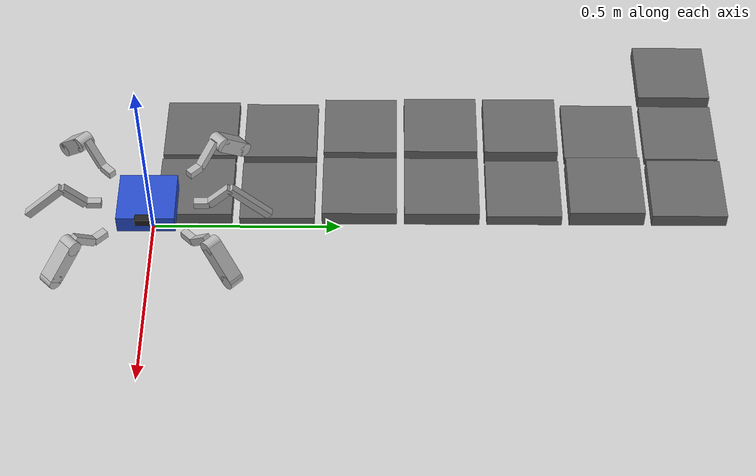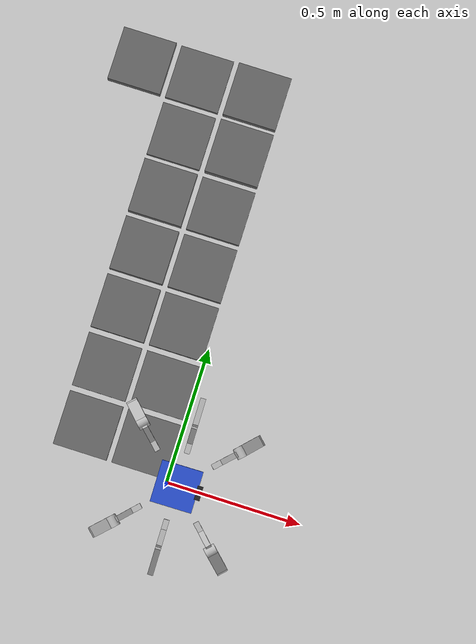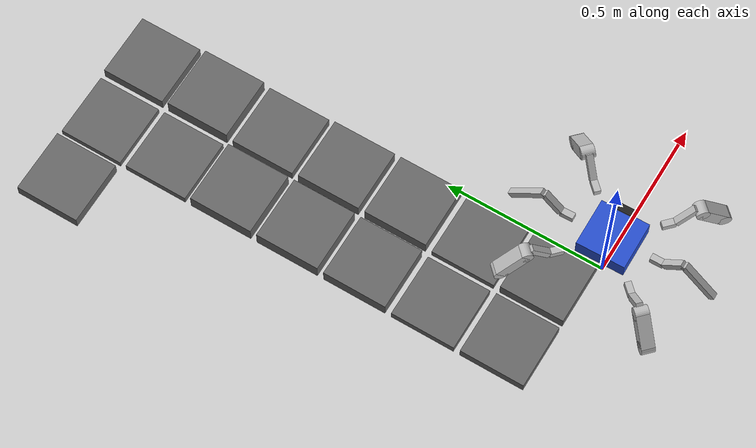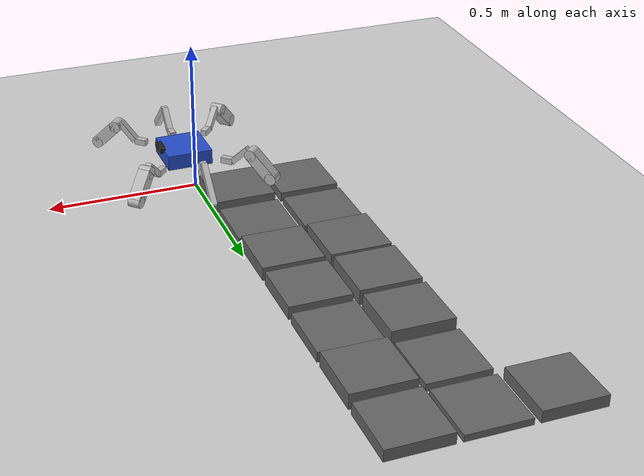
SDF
<sdf version="1.7">
 <world name="default">
  <model name="ground_plane">
   <static>1</static>
   <link name="link">
    <collision name="collision">
     <geometry><plane><normal>0 0 1</normal><size>100 100</size></plane></geometry>
     <surface>
      <contact><collide_bitmask>65535</collide_bitmask></contact>
      <friction><ode><mu>100</mu><mu2>50</mu2></ode></friction>
     </surface>
    </collision>
    <visual name="visual">
     <cast_shadows>0</cast_shadows>
     <geometry><plane><normal>0 0 1</normal><size>100 100</size></plane></geometry>
     <material>
      <script><uri>file://media/materials/scripts/gazebo.material</uri><name>Gazebo/Grey</name></script>
     </material>
    </visual>
   </link>
  </model>
  <model name="spider_bot">
   <link name="base_link">
    <inertial>
     <mass>1</mass>
     <inertia><ixx>0.02</ixx><ixy>0</ixy><ixz>0</ixz><iyy>0.02</iyy><iyz>0</iyz><izz>0.04</izz></inertia>
    </inertial>
    <collision name="base_link_collision">
     <geometry><box><size>0.15 0.15 0.05</size></box></geometry>
     <surface><friction><ode><mu>0.2</mu><mu2>0.2</mu2></ode></friction></surface>
    </collision>
    <visual name="base_link_visual">
     <geometry><box><size>0.15 0.15 0.05</size></box></geometry>
     <material>
      <script><name>Gazebo/Blue</name><uri>file://media/materials/scripts/gazebo.material</uri></script>
     </material>
    </visual>
    <visual name="base_link_fixed_joint_lump__camera_link_visual_1">
     <pose>0.08 0 0.025 0 -0 0</pose>
     <geometry><box><size>0.02 0.05 0.02</size></box></geometry>
     <material>
      <script><name>Gazebo/Black</name><uri>file://media/materials/scripts/gazebo.material</uri></script>
     </material>
    </visual>
    <sensor name="depth_camera" type="depth">
     <update_rate>30</update_rate>
     <camera name="head">
      <horizontal_fov>1.39626</horizontal_fov>
      <image><width>640</width><height>480</height><format>R8G8B8</format></image>
      <clip><near>0.05</near><far>3</far></clip>
     </camera>
     <plugin name="camera_controller" filename="libgazebo_ros_camera.so">
      <ros>
       <namespace>/</namespace>
       <remapping>custom_camera/image_raw:=camera/image_raw</remapping>
       <remapping>custom_camera/depth/image_raw:=camera/depth/image_raw</remapping>
      </ros>
      <camera_name>camera</camera_name>
      <frame_name>camera_link</frame_name>
     </plugin>
     <pose>0.08 0 0.025 0 -0 0</pose>
    </sensor>
   </link>
   <joint name="joint1" type="revolute">
    <pose relative_to="base_link">0.1 0.1 0 0 -0 0.785</pose>
    <parent>base_link</parent>
    <child>l1_c</child>
    <axis>
     <xyz>0 0 1</xyz>
     <limit><lower>-1.57</lower><upper>1.57</upper><effort>50</effort><velocity>1</velocity></limit>
     <dynamics>
      <damping>1</damping>
      <friction>0.1</friction>
      <spring_reference>0</spring_reference>
      <spring_stiffness>0</spring_stiffness>
     </dynamics>
    </axis>
   </joint>
   <link name="l1_c">
    <pose relative_to="joint1">0 0 0 0 -0 0</pose>
    <inertial>
     <mass>0.1</mass>
     <inertia><ixx>0.01</ixx><ixy>0</ixy><ixz>0</ixz><iyy>0.01</iyy><iyz>0</iyz><izz>0.01</izz></inertia>
    </inertial>
    <collision name="l1_c_collision">
     <pose>0.02 0 0 0 -0 0</pose>
     <geometry><box><size>0.04 0.02 0.02</size></box></geometry>
    </collision>
    <visual name="l1_c_visual">
     <pose>0.02 0 0 0 -0 0</pose>
     <geometry><box><size>0.04 0.02 0.02</size></box></geometry>
    </visual>
   </link>
   <joint name="joint2" type="revolute">
    <pose relative_to="l1_c">0.04 0 0 0 -0.785 0</pose>
    <parent>l1_c</parent>
    <child>l1_f</child>
    <axis>
     <xyz>0 -1 0</xyz>
     <limit><lower>-3.14</lower><upper>3.14</upper><effort>50</effort><velocity>1</velocity></limit>
     <dynamics>
      <damping>1</damping>
      <friction>0.1</friction>
      <spring_reference>0</spring_reference>
      <spring_stiffness>0</spring_stiffness>
     </dynamics>
    </axis>
   </joint>
   <link name="l1_f">
    <pose relative_to="joint2">0 0 0 0 -0 0</pose>
    <inertial>
     <mass>0.1</mass>
     <inertia><ixx>0.01</ixx><ixy>0</ixy><ixz>0</ixz><iyy>0.01</iyy><iyz>0</iyz><izz>0.01</izz></inertia>
    </inertial>
    <collision name="l1_f_collision">
     <pose>0.04 0 0 0 -0 0</pose>
     <geometry><box><size>0.08 0.02 0.02</size></box></geometry>
    </collision>
    <visual name="l1_f_visual">
     <pose>0.04 0 0 0 -0 0</pose>
     <geometry><box><size>0.08 0.02 0.02</size></box></geometry>
    </visual>
   </link>
   <joint name="joint3" type="revolute">
    <pose relative_to="l1_f">0.08 0 0 0 1.57 0</pose>
    <parent>l1_f</parent>
    <child>l1_t</child>
    <axis>
     <xyz>0 -1 0</xyz>
     <limit><lower>-3.14</lower><upper>3.14</upper><effort>50</effort><velocity>1</velocity></limit>
     <dynamics>
      <damping>1</damping>
      <friction>0.1</friction>
      <spring_reference>0</spring_reference>
      <spring_stiffness>0</spring_stiffness>
     </dynamics>
    </axis>
   </joint>
   <link name="l1_t">
    <pose relative_to="joint3">0 0 0 0 -0 0</pose>
    <inertial>
     <mass>0.1</mass>
     <inertia><ixx>0.001</ixx><ixy>0</ixy><ixz>0</ixz><iyy>0.001</iyy><iyz>0</iyz><izz>0.001</izz></inertia>
    </inertial>
    <collision name="l1_t_collision">
     <pose>0.07 0 0 0 -0 0</pose>
     <geometry><box><size>0.14 0.04 0.04</size></box></geometry>
     <surface>
      <contact><ode><kp>10000</kp><kd>100</kd></ode></contact>
      <friction><ode><mu>8</mu><mu2>8</mu2></ode></friction>
     </surface>
    </collision>
    <visual name="l1_t_visual">
     <pose>0.07 0 0 0 -0 0</pose>
     <geometry><box><size>0.1 0.04 0.04</size></box></geometry>
    </visual>
    <visual name="l1_t_visual_1">
     <pose>0.02 0 0 1.5708 -0 0</pose>
     <geometry><cylinder><length>0.04</length><radius>0.02</radius></cylinder></geometry>
    </visual>
    <visual name="l1_t_visual_2">
     <pose>0.12 0 0 1.5708 -0 0</pose>
     <geometry><cylinder><length>0.04</length><radius>0.02</radius></cylinder></geometry>
    </visual>
    <self_collide>1</self_collide>
   </link>
   <joint name="joint10" type="revolute">
    <pose relative_to="base_link">-0.1 -0.1 0 0 0 -2.355</pose>
    <parent>base_link</parent>
    <child>l4_c</child>
    <axis>
     <xyz>0 0 1</xyz>
     <limit><lower>-1.57</lower><upper>1.57</upper><effort>50</effort><velocity>1</velocity></limit>
     <dynamics>
      <damping>1</damping>
      <friction>0.1</friction>
      <spring_reference>0</spring_reference>
      <spring_stiffness>0</spring_stiffness>
     </dynamics>
    </axis>
   </joint>
   <link name="l4_c">
    <pose relative_to="joint10">0 0 0 0 -0 0</pose>
    <inertial>
     <mass>0.1</mass>
     <inertia><ixx>0.01</ixx><ixy>0</ixy><ixz>0</ixz><iyy>0.01</iyy><iyz>0</iyz><izz>0.01</izz></inertia>
    </inertial>
    <collision name="l4_c_collision">
     <pose>0.02 0 0 0 -0 0</pose>
     <geometry><box><size>0.04 0.02 0.02</size></box></geometry>
    </collision>
    <visual name="l4_c_visual">
     <pose>0.02 0 0 0 -0 0</pose>
     <geometry><box><size>0.04 0.02 0.02</size></box></geometry>
    </visual>
   </link>
   <joint name="joint11" type="revolute">
    <pose relative_to="l4_c">0.04 0 0 0 -0.785 0</pose>
    <parent>l4_c</parent>
    <child>l4_f</child>
    <axis>
     <xyz>0 -1 0</xyz>
     <limit><lower>-3.14</lower><upper>3.14</upper><effort>50</effort><velocity>1</velocity></limit>
     <dynamics>
      <damping>1</damping>
      <friction>0.1</friction>
      <spring_reference>0</spring_reference>
      <spring_stiffness>0</spring_stiffness>
     </dynamics>
    </axis>
   </joint>
   <link name="l4_f">
    <pose relative_to="joint11">0 0 0 0 -0 0</pose>
    <inertial>
     <mass>0.1</mass>
     <inertia><ixx>0.01</ixx><ixy>0</ixy><ixz>0</ixz><iyy>0.01</iyy><iyz>0</iyz><izz>0.01</izz></inertia>
    </inertial>
    <collision name="l4_f_collision">
     <pose>0.04 0 0 0 -0 0</pose>
     <geometry><box><size>0.08 0.02 0.02</size></box></geometry>
    </collision>
    <visual name="l4_f_visual">
     <pose>0.04 0 0 0 -0 0</pose>
     <geometry><box><size>0.08 0.02 0.02</size></box></geometry>
    </visual>
   </link>
   <joint name="joint12" type="revolute">
    <pose relative_to="l4_f">0.08 0 0 0 1.57 0</pose>
    <parent>l4_f</parent>
    <child>l4_t</child>
    <axis>
     <xyz>0 -1 0</xyz>
     <limit><lower>-3.14</lower><upper>3.14</upper><effort>50</effort><velocity>1</velocity></limit>
     <dynamics>
      <damping>1</damping>
      <friction>0.1</friction>
      <spring_reference>0</spring_reference>
      <spring_stiffness>0</spring_stiffness>
     </dynamics>
    </axis>
   </joint>
   <link name="l4_t">
    <pose relative_to="joint12">0 0 0 0 -0 0</pose>
    <inertial>
     <mass>0.1</mass>
     <inertia><ixx>0.001</ixx><ixy>0</ixy><ixz>0</ixz><iyy>0.001</iyy><iyz>0</iyz><izz>0.001</izz></inertia>
    </inertial>
    <collision name="l4_t_collision">
     <pose>0.07 0 0 0 -0 0</pose>
     <geometry><box><size>0.14 0.04 0.04</size></box></geometry>
     <surface>
      <contact><ode><kp>10000</kp><kd>100</kd></ode></contact>
      <friction><ode><mu>8</mu><mu2>8</mu2></ode></friction>
     </surface>
    </collision>
    <visual name="l4_t_visual">
     <pose>0.07 0 0 0 -0 0</pose>
     <geometry><box><size>0.1 0.04 0.04</size></box></geometry>
    </visual>
    <visual name="l4_t_visual_1">
     <pose>0.02 0 0 1.5708 -0 0</pose>
     <geometry><cylinder><length>0.04</length><radius>0.02</radius></cylinder></geometry>
    </visual>
    <visual name="l4_t_visual_2">
     <pose>0.12 0 0 1.5708 -0 0</pose>
     <geometry><cylinder><length>0.04</length><radius>0.02</radius></cylinder></geometry>
    </visual>
    <self_collide>1</self_collide>
   </link>
   <joint name="joint13" type="revolute">
    <pose relative_to="base_link">0 -0.12 0 0 0 -1.57</pose>
    <parent>base_link</parent>
    <child>l5_c</child>
    <axis>
     <xyz>0 0 1</xyz>
     <limit><lower>-1.57</lower><upper>1.57</upper><effort>50</effort><velocity>1</velocity></limit>
     <dynamics>
      <damping>1</damping>
      <friction>0.1</friction>
      <spring_reference>0</spring_reference>
      <spring_stiffness>0</spring_stiffness>
     </dynamics>
    </axis>
   </joint>
   <link name="l5_c">
    <pose relative_to="joint13">0 0 0 0 -0 0</pose>
    <inertial>
     <mass>0.1</mass>
     <inertia><ixx>0.01</ixx><ixy>0</ixy><ixz>0</ixz><iyy>0.01</iyy><iyz>0</iyz><izz>0.01</izz></inertia>
    </inertial>
    <collision name="l5_c_collision">
     <pose>0.02 0 0 0 -0 0</pose>
     <geometry><box><size>0.04 0.02 0.02</size></box></geometry>
    </collision>
    <visual name="l5_c_visual">
     <pose>0.02 0 0 0 -0 0</pose>
     <geometry><box><size>0.04 0.02 0.02</size></box></geometry>
    </visual>
   </link>
   <joint name="joint14" type="revolute">
    <pose relative_to="l5_c">0.04 0 0 0 -0.785 0</pose>
    <parent>l5_c</parent>
    <child>l5_f</child>
    <axis>
     <xyz>0 -1 0</xyz>
     <limit><lower>-3.14</lower><upper>3.14</upper><effort>50</effort><velocity>1</velocity></limit>
     <dynamics>
      <damping>1</damping>
      <friction>0.1</friction>
      <spring_reference>0</spring_reference>
      <spring_stiffness>0</spring_stiffness>
     </dynamics>
    </axis>
   </joint>
   <link name="l5_f">
    <pose relative_to="joint14">0 0 0 0 -0 0</pose>
    <inertial>
     <mass>0.1</mass>
     <inertia><ixx>0.01</ixx><ixy>0</ixy><ixz>0</ixz><iyy>0.01</iyy><iyz>0</iyz><izz>0.01</izz></inertia>
    </inertial>
    <collision name="l5_f_collision">
     <pose>0.04 0 0 0 -0 0</pose>
     <geometry><box><size>0.08 0.02 0.02</size></box></geometry>
    </collision>
    <visual name="l5_f_visual">
     <pose>0.04 0 0 0 -0 0</pose>
     <geometry><box><size>0.08 0.02 0.02</size></box></geometry>
    </visual>
   </link>
   <joint name="joint15" type="revolute">
    <pose relative_to="l5_f">0.08 0 0 0 1.57 0</pose>
    <parent>l5_f</parent>
    <child>l5_t</child>
    <axis>
     <xyz>0 -1 0</xyz>
     <limit><lower>-3.14</lower><upper>3.14</upper><effort>50</effort><velocity>1</velocity></limit>
     <dynamics>
      <damping>1</damping>
      <friction>0.1</friction>
      <spring_reference>0</spring_reference>
      <spring_stiffness>0</spring_stiffness>
     </dynamics>
    </axis>
   </joint>
   <link name="l5_t">
    <pose relative_to="joint15">0 0 0 0 -0 0</pose>
    <inertial>
     <mass>0.1</mass>
     <inertia><ixx>0.01</ixx><ixy>0</ixy><ixz>0</ixz><iyy>0.01</iyy><iyz>0</iyz><izz>0.01</izz></inertia>
    </inertial>
    <collision name="l5_t_collision">
     <pose>0.07 0 0 0 -0 0</pose>
     <geometry><box><size>0.14 0.02 0.02</size></box></geometry>
     <surface>
      <contact><ode><kp>10000</kp><kd>100</kd></ode></contact>
      <friction><ode><mu>8</mu><mu2>8</mu2></ode></friction>
     </surface>
    </collision>
    <visual name="l5_t_visual">
     <pose>0.07 0 0 0 -0 0</pose>
     <geometry><box><size>0.14 0.02 0.02</size></box></geometry>
    </visual>
    <self_collide>1</self_collide>
   </link>
   <joint name="joint16" type="revolute">
    <pose relative_to="base_link">0.1 -0.1 0 0 0 -0.785</pose>
    <parent>base_link</parent>
    <child>l6_c</child>
    <axis>
     <xyz>0 0 1</xyz>
     <limit><lower>-1.57</lower><upper>1.57</upper><effort>50</effort><velocity>1</velocity></limit>
     <dynamics>
      <damping>1</damping>
      <friction>0.1</friction>
      <spring_reference>0</spring_reference>
      <spring_stiffness>0</spring_stiffness>
     </dynamics>
    </axis>
   </joint>
   <link name="l6_c">
    <pose relative_to="joint16">0 0 0 0 -0 0</pose>
    <inertial>
     <mass>0.1</mass>
     <inertia><ixx>0.01</ixx><ixy>0</ixy><ixz>0</ixz><iyy>0.01</iyy><iyz>0</iyz><izz>0.01</izz></inertia>
    </inertial>
    <collision name="l6_c_collision">
     <pose>0.02 0 0 0 -0 0</pose>
     <geometry><box><size>0.04 0.02 0.02</size></box></geometry>
    </collision>
    <visual name="l6_c_visual">
     <pose>0.02 0 0 0 -0 0</pose>
     <geometry><box><size>0.04 0.02 0.02</size></box></geometry>
    </visual>
   </link>
   <joint name="joint17" type="revolute">
    <pose relative_to="l6_c">0.04 0 0 0 -0.785 0</pose>
    <parent>l6_c</parent>
    <child>l6_f</child>
    <axis>
     <xyz>0 -1 0</xyz>
     <limit><lower>-3.14</lower><upper>3.14</upper><effort>50</effort><velocity>1</velocity></limit>
     <dynamics>
      <damping>1</damping>
      <friction>0.1</friction>
      <spring_reference>0</spring_reference>
      <spring_stiffness>0</spring_stiffness>
     </dynamics>
    </axis>
   </joint>
   <link name="l6_f">
    <pose relative_to="joint17">0 0 0 0 -0 0</pose>
    <inertial>
     <mass>0.1</mass>
     <inertia><ixx>0.01</ixx><ixy>0</ixy><ixz>0</ixz><iyy>0.01</iyy><iyz>0</iyz><izz>0.01</izz></inertia>
    </inertial>
    <collision name="l6_f_collision">
     <pose>0.04 0 0 0 -0 0</pose>
     <geometry><box><size>0.08 0.02 0.02</size></box></geometry>
    </collision>
    <visual name="l6_f_visual">
     <pose>0.04 0 0 0 -0 0</pose>
     <geometry><box><size>0.08 0.02 0.02</size></box></geometry>
    </visual>
   </link>
   <joint name="joint18" type="revolute">
    <pose relative_to="l6_f">0.08 0 0 0 1.57 0</pose>
    <parent>l6_f</parent>
    <child>l6_t</child>
    <axis>
     <xyz>0 -1 0</xyz>
     <limit><lower>-3.14</lower><upper>3.14</upper><effort>50</effort><velocity>1</velocity></limit>
     <dynamics>
      <damping>1</damping>
      <friction>0.1</friction>
      <spring_reference>0</spring_reference>
      <spring_stiffness>0</spring_stiffness>
     </dynamics>
    </axis>
   </joint>
   <link name="l6_t">
    <pose relative_to="joint18">0 0 0 0 -0 0</pose>
    <inertial>
     <mass>0.1</mass>
     <inertia><ixx>0.001</ixx><ixy>0</ixy><ixz>0</ixz><iyy>0.001</iyy><iyz>0</iyz><izz>0.001</izz></inertia>
    </inertial>
    <collision name="l6_t_collision">
     <pose>0.07 0 0 0 -0 0</pose>
     <geometry><box><size>0.14 0.04 0.04</size></box></geometry>
     <surface>
      <contact><ode><kp>10000</kp><kd>100</kd></ode></contact>
      <friction><ode><mu>8</mu><mu2>8</mu2></ode></friction>
     </surface>
    </collision>
    <visual name="l6_t_visual">
     <pose>0.07 0 0 0 -0 0</pose>
     <geometry><box><size>0.1 0.04 0.04</size></box></geometry>
    </visual>
    <visual name="l6_t_visual_1">
     <pose>0.02 0 0 1.5708 -0 0</pose>
     <geometry><cylinder><length>0.04</length><radius>0.02</radius></cylinder></geometry>
    </visual>
    <visual name="l6_t_visual_2">
     <pose>0.12 0 0 1.5708 -0 0</pose>
     <geometry><cylinder><length>0.04</length><radius>0.02</radius></cylinder></geometry>
    </visual>
    <self_collide>1</self_collide>
   </link>
   <joint name="joint4" type="revolute">
    <pose relative_to="base_link">0 0.12 0 0 -0 1.57</pose>
    <parent>base_link</parent>
    <child>l2_c</child>
    <axis>
     <xyz>0 0 1</xyz>
     <limit><lower>-1.57</lower><upper>1.57</upper><effort>50</effort><velocity>1</velocity></limit>
     <dynamics>
      <damping>1</damping>
      <friction>0.1</friction>
      <spring_reference>0</spring_reference>
      <spring_stiffness>0</spring_stiffness>
     </dynamics>
    </axis>
   </joint>
   <link name="l2_c">
    <pose relative_to="joint4">0 0 0 0 -0 0</pose>
    <inertial>
     <mass>0.1</mass>
     <inertia><ixx>0.01</ixx><ixy>0</ixy><ixz>0</ixz><iyy>0.01</iyy><iyz>0</iyz><izz>0.01</izz></inertia>
    </inertial>
    <collision name="l2_c_collision">
     <pose>0.02 0 0 0 -0 0</pose>
     <geometry><box><size>0.04 0.02 0.02</size></box></geometry>
    </collision>
    <visual name="l2_c_visual">
     <pose>0.02 0 0 0 -0 0</pose>
     <geometry><box><size>0.04 0.02 0.02</size></box></geometry>
    </visual>
   </link>
   <joint name="joint5" type="revolute">
    <pose relative_to="l2_c">0.04 0 0 0 -0.785 0</pose>
    <parent>l2_c</parent>
    <child>l2_f</child>
    <axis>
     <xyz>0 -1 0</xyz>
     <limit><lower>-3.14</lower><upper>3.14</upper><effort>50</effort><velocity>1</velocity></limit>
     <dynamics>
      <damping>1</damping>
      <friction>0.1</friction>
      <spring_reference>0</spring_reference>
      <spring_stiffness>0</spring_stiffness>
     </dynamics>
    </axis>
   </joint>
   <link name="l2_f">
    <pose relative_to="joint5">0 0 0 0 -0 0</pose>
    <inertial>
     <mass>0.1</mass>
     <inertia><ixx>0.01</ixx><ixy>0</ixy><ixz>0</ixz><iyy>0.01</iyy><iyz>0</iyz><izz>0.01</izz></inertia>
    </inertial>
    <collision name="l2_f_collision">
     <pose>0.04 0 0 0 -0 0</pose>
     <geometry><box><size>0.08 0.02 0.02</size></box></geometry>
    </collision>
    <visual name="l2_f_visual">
     <pose>0.04 0 0 0 -0 0</pose>
     <geometry><box><size>0.08 0.02 0.02</size></box></geometry>
    </visual>
   </link>
   <joint name="joint6" type="revolute">
    <pose relative_to="l2_f">0.08 0 0 0 1.57 0</pose>
    <parent>l2_f</parent>
    <child>l2_t</child>
    <axis>
     <xyz>0 -1 0</xyz>
     <limit><lower>-3.14</lower><upper>3.14</upper><effort>50</effort><velocity>1</velocity></limit>
     <dynamics>
      <damping>1</damping>
      <friction>0.1</friction>
      <spring_reference>0</spring_reference>
      <spring_stiffness>0</spring_stiffness>
     </dynamics>
    </axis>
   </joint>
   <link name="l2_t">
    <pose relative_to="joint6">0 0 0 0 -0 0</pose>
    <inertial>
     <mass>0.1</mass>
     <inertia><ixx>0.01</ixx><ixy>0</ixy><ixz>0</ixz><iyy>0.01</iyy><iyz>0</iyz><izz>0.01</izz></inertia>
    </inertial>
    <collision name="l2_t_collision">
     <pose>0.07 0 0 0 -0 0</pose>
     <geometry><box><size>0.14 0.02 0.02</size></box></geometry>
     <surface>
      <contact><ode><kp>10000</kp><kd>100</kd></ode></contact>
      <friction><ode><mu>8</mu><mu2>8</mu2></ode></friction>
     </surface>
    </collision>
    <visual name="l2_t_visual">
     <pose>0.07 0 0 0 -0 0</pose>
     <geometry><box><size>0.14 0.02 0.02</size></box></geometry>
    </visual>
    <self_collide>1</self_collide>
   </link>
   <joint name="joint7" type="revolute">
    <pose relative_to="base_link">-0.1 0.1 0 0 -0 2.355</pose>
    <parent>base_link</parent>
    <child>l3_c</child>
    <axis>
     <xyz>0 0 1</xyz>
     <limit><lower>-1.57</lower><upper>1.57</upper><effort>50</effort><velocity>1</velocity></limit>
     <dynamics>
      <damping>1</damping>
      <friction>0.1</friction>
      <spring_reference>0</spring_reference>
      <spring_stiffness>0</spring_stiffness>
     </dynamics>
    </axis>
   </joint>
   <link name="l3_c">
    <pose relative_to="joint7">0 0 0 0 -0 0</pose>
    <inertial>
     <mass>0.1</mass>
     <inertia><ixx>0.01</ixx><ixy>0</ixy><ixz>0</ixz><iyy>0.01</iyy><iyz>0</iyz><izz>0.01</izz></inertia>
    </inertial>
    <collision name="l3_c_collision">
     <pose>0.02 0 0 0 -0 0</pose>
     <geometry><box><size>0.04 0.02 0.02</size></box></geometry>
    </collision>
    <visual name="l3_c_visual">
     <pose>0.02 0 0 0 -0 0</pose>
     <geometry><box><size>0.04 0.02 0.02</size></box></geometry>
    </visual>
   </link>
   <joint name="joint8" type="revolute">
    <pose relative_to="l3_c">0.04 0 0 0 -0.785 0</pose>
    <parent>l3_c</parent>
    <child>l3_f</child>
    <axis>
     <xyz>0 -1 0</xyz>
     <limit><lower>-3.14</lower><upper>3.14</upper><effort>50</effort><velocity>1</velocity></limit>
     <dynamics>
      <damping>1</damping>
      <friction>0.1</friction>
      <spring_reference>0</spring_reference>
      <spring_stiffness>0</spring_stiffness>
     </dynamics>
    </axis>
   </joint>
   <link name="l3_f">
    <pose relative_to="joint8">0 0 0 0 -0 0</pose>
    <inertial>
     <mass>0.1</mass>
     <inertia><ixx>0.01</ixx><ixy>0</ixy><ixz>0</ixz><iyy>0.01</iyy><iyz>0</iyz><izz>0.01</izz></inertia>
    </inertial>
    <collision name="l3_f_collision">
     <pose>0.04 0 0 0 -0 0</pose>
     <geometry><box><size>0.08 0.02 0.02</size></box></geometry>
    </collision>
    <visual name="l3_f_visual">
     <pose>0.04 0 0 0 -0 0</pose>
     <geometry><box><size>0.08 0.02 0.02</size></box></geometry>
    </visual>
   </link>
   <joint name="joint9" type="revolute">
    <pose relative_to="l3_f">0.08 0 0 0 1.57 0</pose>
    <parent>l3_f</parent>
    <child>l3_t</child>
    <axis>
     <xyz>0 -1 0</xyz>
     <limit><lower>-3.14</lower><upper>3.14</upper><effort>50</effort><velocity>1</velocity></limit>
     <dynamics>
      <damping>1</damping>
      <friction>0.1</friction>
      <spring_reference>0</spring_reference>
      <spring_stiffness>0</spring_stiffness>
     </dynamics>
    </axis>
   </joint>
   <link name="l3_t">
    <pose relative_to="joint9">0 0 0 0 -0 0</pose>
    <inertial>
     <mass>0.1</mass>
     <inertia><ixx>0.001</ixx><ixy>0</ixy><ixz>0</ixz><iyy>0.001</iyy><iyz>0</iyz><izz>0.001</izz></inertia>
    </inertial>
    <collision name="l3_t_collision">
     <pose>0.07 0 0 0 -0 0</pose>
     <geometry><box><size>0.14 0.04 0.04</size></box></geometry>
     <surface>
      <contact><ode><kp>10000</kp><kd>100</kd></ode></contact>
      <friction><ode><mu>8</mu><mu2>8</mu2></ode></friction>
     </surface>
    </collision>
    <visual name="l3_t_visual">
     <pose>0.07 0 0 0 -0 0</pose>
     <geometry><box><size>0.1 0.04 0.04</size></box></geometry>
    </visual>
    <visual name="l3_t_visual_1">
     <pose>0.02 0 0 1.5708 -0 0</pose>
     <geometry><cylinder><length>0.04</length><radius>0.02</radius></cylinder></geometry>
    </visual>
    <visual name="l3_t_visual_2">
     <pose>0.12 0 0 1.5708 -0 0</pose>
     <geometry><cylinder><length>0.04</length><radius>0.02</radius></cylinder></geometry>
    </visual>
    <self_collide>1</self_collide>
   </link>
   <static>0</static>
   <plugin name="gazebo_ros2_control" filename="libgazebo_ros2_control.so">
    <parameters>/home/chia/spider_ws/install/spider_bot/share/spider_bot/config/spider_bot_controllers.yaml</parameters>
   </plugin>
   <plugin name="gazebo_ros_p3d" filename="libgazebo_ros_p3d.so">
    <ros><namespace>/</namespace><remapping>odom:=odom</remapping></ros>
    <body_name>base_link</body_name>
    <frame_name>world</frame_name>
    <update_rate>50</update_rate>
   </plugin>
   <pose>0.037872 0.001576 0.137081 -0.010307 -0.001623 0.012647</pose>
  </model>
  <model name="terrain_5_14">
   <static>1</static>
   <link name="link">
    <collision name="collision">
     <geometry><box><size>0.2 0.2 0.03798</size></box></geometry>
     <surface><friction><ode><mu>100</mu><mu2>100</mu2></ode></friction></surface>
    </collision>
    <visual name="visual">
     <geometry><box><size>0.2 0.2 0.03798</size></box></geometry>
     <material><ambient>0.4 0.4 0.4 1</ambient></material>
    </visual>
   </link>
   <pose>-0.55 1.43 0.01899 0 -0 0</pose>
  </model>
  <model name="terrain_6_8">
   <static>1</static>
   <link name="link">
    <collision name="collision">
     <geometry><box><size>0.2 0.2 0.031631</size></box></geometry>
     <surface><friction><ode><mu>100</mu><mu2>100</mu2></ode></friction></surface>
    </collision>
    <visual name="visual">
     <geometry><box><size>0.2 0.2 0.031631</size></box></geometry>
     <material><ambient>0.4 0.4 0.4 1</ambient></material>
    </visual>
   </link>
   <pose>-0.33 0.11 0.015815 0 -0 0</pose>
  </model>
  <model name="terrain_6_9">
   <static>1</static>
   <link name="link">
    <collision name="collision">
     <geometry><box><size>0.2 0.2 0.025098</size></box></geometry>
     <surface><friction><ode><mu>100</mu><mu2>100</mu2></ode></friction></surface>
    </collision>
    <visual name="visual">
     <geometry><box><size>0.2 0.2 0.025098</size></box></geometry>
     <material><ambient>0.4 0.4 0.4 1</ambient></material>
    </visual>
   </link>
   <pose>-0.33 0.33 0.012549 0 -0 0</pose>
  </model>
  <model name="terrain_6_10">
   <static>1</static>
   <link name="link">
    <collision name="collision">
     <geometry><box><size>0.2 0.2 0.044324</size></box></geometry>
     <surface><friction><ode><mu>100</mu><mu2>100</mu2></ode></friction></surface>
    </collision>
    <visual name="visual">
     <geometry><box><size>0.2 0.2 0.044324</size></box></geometry>
     <material><ambient>0.4 0.4 0.4 1</ambient></material>
    </visual>
   </link>
   <pose>-0.33 0.55 0.022162 0 -0 0</pose>
  </model>
  <model name="terrain_6_11">
   <static>1</static>
   <link name="link">
    <collision name="collision">
     <geometry><box><size>0.2 0.2 0.049287</size></box></geometry>
     <surface><friction><ode><mu>100</mu><mu2>100</mu2></ode></friction></surface>
    </collision>
    <visual name="visual">
     <geometry><box><size>0.2 0.2 0.049287</size></box></geometry>
     <material><ambient>0.4 0.4 0.4 1</ambient></material>
    </visual>
   </link>
   <pose>-0.33 0.77 0.024643 0 -0 0</pose>
  </model>
  <model name="terrain_6_12">
   <static>1</static>
   <link name="link">
    <collision name="collision">
     <geometry><box><size>0.2 0.2 0.048448</size></box></geometry>
     <surface><friction><ode><mu>100</mu><mu2>100</mu2></ode></friction></surface>
    </collision>
    <visual name="visual">
     <geometry><box><size>0.2 0.2 0.048448</size></box></geometry>
     <material><ambient>0.4 0.4 0.4 1</ambient></material>
    </visual>
   </link>
   <pose>-0.33 0.99 0.024224 0 -0 0</pose>
  </model>
  <model name="terrain_6_13">
   <static>1</static>
   <link name="link">
    <collision name="collision">
     <geometry><box><size>0.2 0.2 0.024446</size></box></geometry>
     <surface><friction><ode><mu>100</mu><mu2>100</mu2></ode></friction></surface>
    </collision>
    <visual name="visual">
     <geometry><box><size>0.2 0.2 0.024446</size></box></geometry>
     <material><ambient>0.4 0.4 0.4 1</ambient></material>
    </visual>
   </link>
   <pose>-0.33 1.21 0.012223 0 -0 0</pose>
  </model>
  <model name="terrain_6_14">
   <static>1</static>
   <link name="link">
    <collision name="collision">
     <geometry><box><size>0.2 0.2 0.021743</size></box></geometry>
     <surface><friction><ode><mu>100</mu><mu2>100</mu2></ode></friction></surface>
    </collision>
    <visual name="visual">
     <geometry><box><size>0.2 0.2 0.021743</size></box></geometry>
     <material><ambient>0.4 0.4 0.4 1</ambient></material>
    </visual>
   </link>
   <pose>-0.33 1.43 0.010871 0 -0 0</pose>
  </model>
  <model name="terrain_7_8">
   <static>1</static>
   <link name="link">
    <collision name="collision">
     <geometry><box><size>0.2 0.2 0.037956</size></box></geometry>
     <surface><friction><ode><mu>100</mu><mu2>100</mu2></ode></friction></surface>
    </collision>
    <visual name="visual">
     <geometry><box><size>0.2 0.2 0.037956</size></box></geometry>
     <material><ambient>0.4 0.4 0.4 1</ambient></material>
    </visual>
   </link>
   <pose>-0.11 0.11 0.018978 0 -0 0</pose>
  </model>
  <model name="terrain_7_9">
   <static>1</static>
   <link name="link">
    <collision name="collision">
     <geometry><box><size>0.2 0.2 0.023023</size></box></geometry>
     <surface><friction><ode><mu>100</mu><mu2>100</mu2></ode></friction></surface>
    </collision>
    <visual name="visual">
     <geometry><box><size>0.2 0.2 0.023023</size></box></geometry>
     <material><ambient>0.4 0.4 0.4 1</ambient></material>
    </visual>
   </link>
   <pose>-0.11 0.33 0.011512 0 -0 0</pose>
  </model>
  <model name="terrain_7_10">
   <static>1</static>
   <link name="link">
    <collision name="collision">
     <geometry><box><size>0.2 0.2 0.043767</size></box></geometry>
     <surface><friction><ode><mu>100</mu><mu2>100</mu2></ode></friction></surface>
    </collision>
    <visual name="visual">
     <geometry><box><size>0.2 0.2 0.043767</size></box></geometry>
     <material><ambient>0.4 0.4 0.4 1</ambient></material>
    </visual>
   </link>
   <pose>-0.11 0.55 0.021884 0 -0 0</pose>
  </model>
  <model name="terrain_7_11">
   <static>1</static>
   <link name="link">
    <collision name="collision">
     <geometry><box><size>0.2 0.2 0.042629</size></box></geometry>
     <surface><friction><ode><mu>100</mu><mu2>100</mu2></ode></friction></surface>
    </collision>
    <visual name="visual">
     <geometry><box><size>0.2 0.2 0.042629</size></box></geometry>
     <material><ambient>0.4 0.4 0.4 1</ambient></material>
    </visual>
   </link>
   <pose>-0.11 0.77 0.021314 0 -0 0</pose>
  </model>
  <model name="terrain_7_12">
   <static>1</static>
   <link name="link">
    <collision name="collision">
     <geometry><box><size>0.2 0.2 0.033528</size></box></geometry>
     <surface><friction><ode><mu>100</mu><mu2>100</mu2></ode></friction></surface>
    </collision>
    <visual name="visual">
     <geometry><box><size>0.2 0.2 0.033528</size></box></geometry>
     <material><ambient>0.4 0.4 0.4 1</ambient></material>
    </visual>
   </link>
   <pose>-0.11 0.99 0.016764 0 -0 0</pose>
  </model>
  <model name="terrain_7_13">
   <static>1</static>
   <link name="link">
    <collision name="collision">
     <geometry><box><size>0.2 0.2 0.049123</size></box></geometry>
     <surface><friction><ode><mu>100</mu><mu2>100</mu2></ode></friction></surface>
    </collision>
    <visual name="visual">
     <geometry><box><size>0.2 0.2 0.049123</size></box></geometry>
     <material><ambient>0.4 0.4 0.4 1</ambient></material>
    </visual>
   </link>
   <pose>-0.11 1.21 0.024562 0 -0 0</pose>
  </model>
  <model name="terrain_7_14">
   <static>1</static>
   <link name="link">
    <collision name="collision">
     <geometry><box><size>0.2 0.2 0.037795</size></box></geometry>
     <surface><friction><ode><mu>100</mu><mu2>100</mu2></ode></friction></surface>
    </collision>
    <visual name="visual">
     <geometry><box><size>0.2 0.2 0.037795</size></box></geometry>
     <material><ambient>0.4 0.4 0.4 1</ambient></material>
    </visual>
   </link>
   <pose>-0.11 1.43 0.018897 0 -0 0</pose>
  </model>
 </world>
</sdf>
